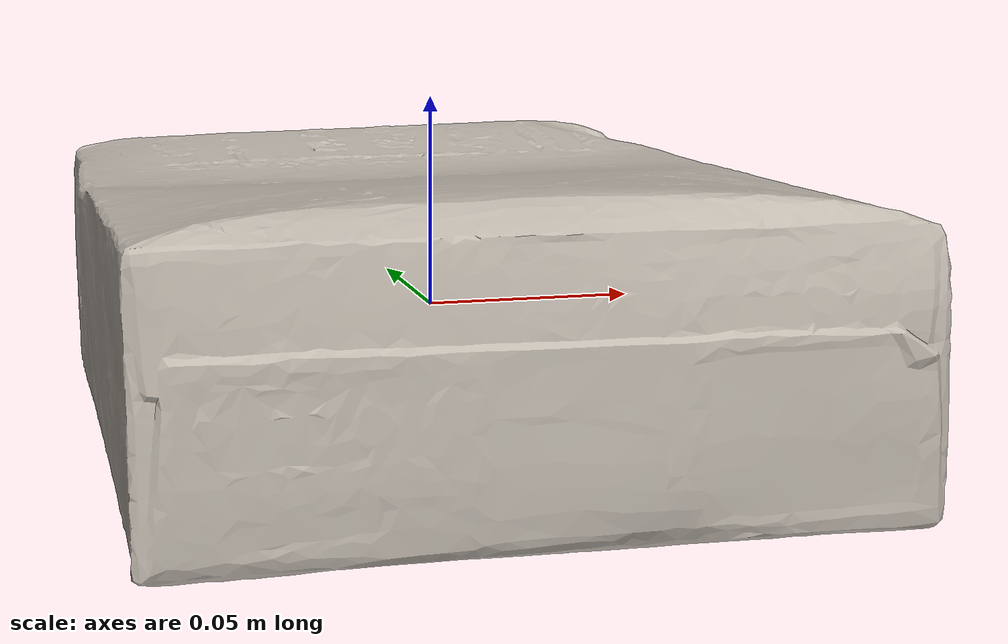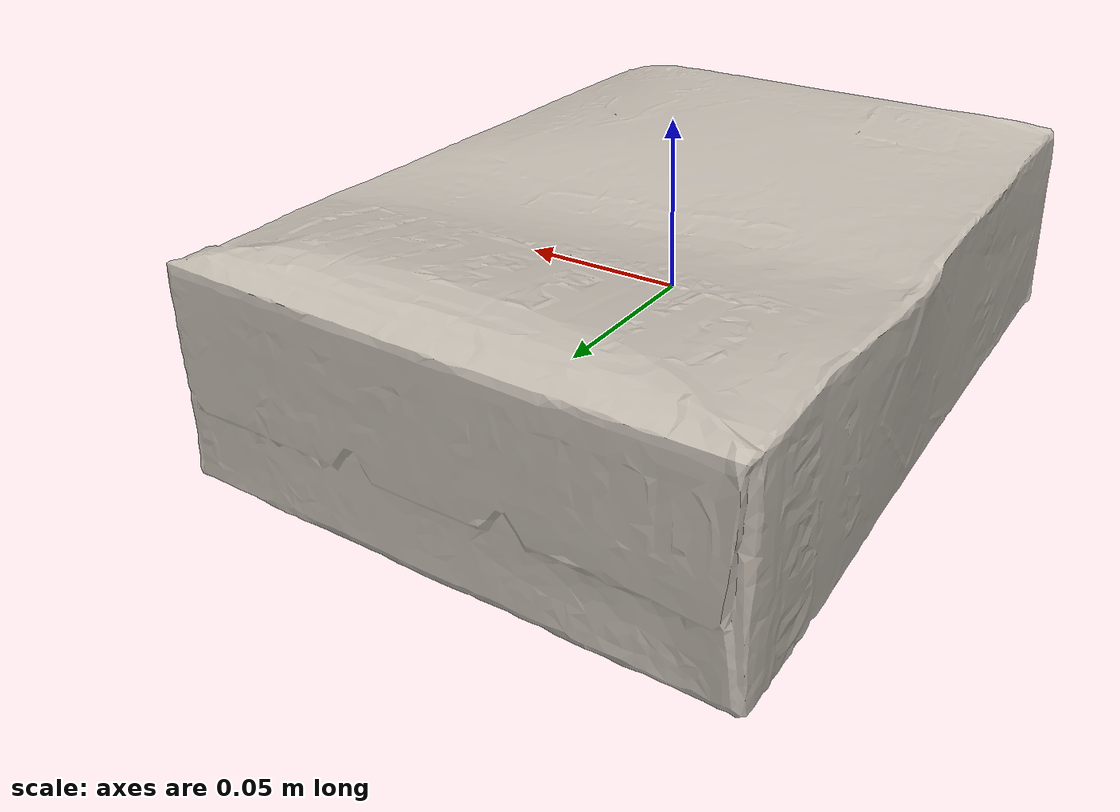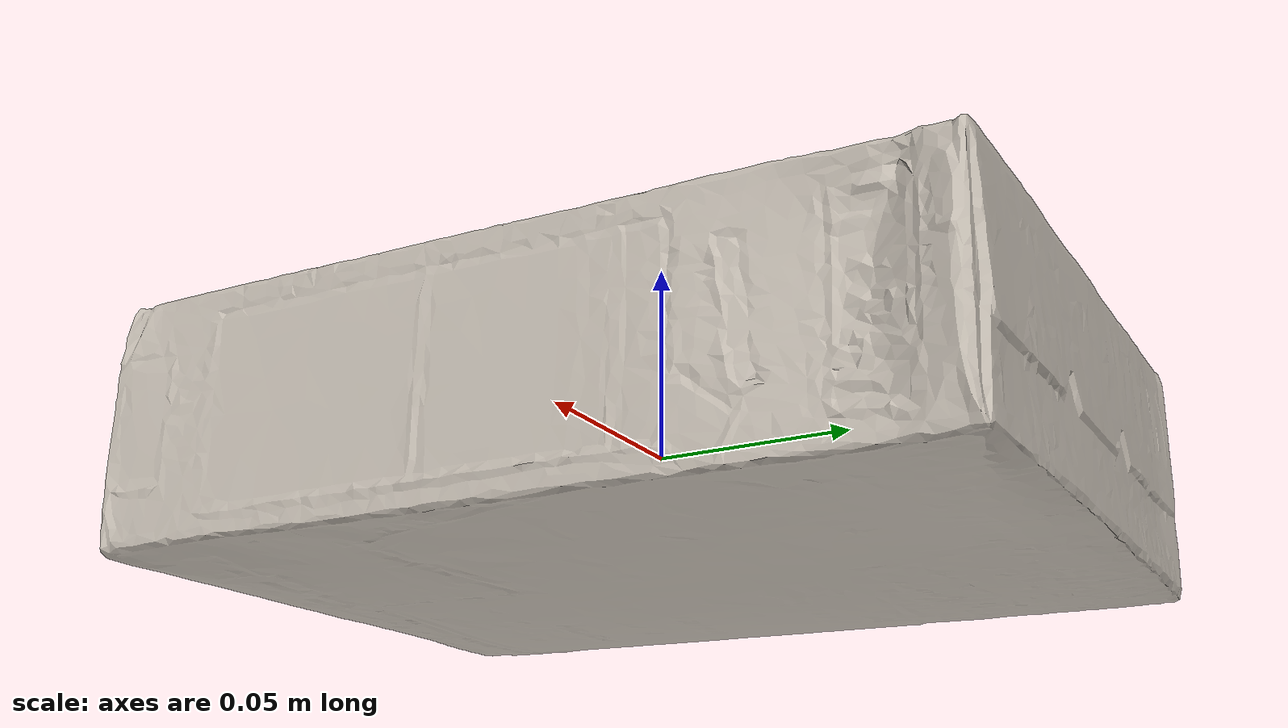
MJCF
<mujoco model="cracker_box_flipped">
  <compiler angle="radian" />

  <asset>
    <mesh name="cracker_box_flipped_visual_mesh" file="cracker_box_flipped/textured.obj" />
    <mesh name="cracker_box_flipped_collision_mesh_0" file="cracker_box_flipped/textured_coacd_0.stl" />
    <mesh name="cracker_box_flipped_collision_mesh_1" file="cracker_box_flipped/textured_coacd_1.stl" />
    <texture name="cracker_box_flipped_texture" type="2d" file="cracker_box_flipped/texture_map.png" />
    <material name="cracker_box_flipped_material" texture="cracker_box_flipped_texture" />
  </asset>

  <worldbody>
    <body name="cracker_box_flipped" pos="0 0 0" euler="0 0 0">
      <freejoint name="cracker_box_flipped_joint" />
      <geom name="cracker_box_flipped_visual_geom" type="mesh" mesh="cracker_box_flipped_visual_mesh" material="cracker_box_flipped_material" pos="0.01420505447388014 -0.10220486833098277 0.01485355781018036" euler="0 0 0" contype="0" conaffinity="0" group="0" />
      <geom name="cracker_box_flipped_collision_geom_0" type="mesh" mesh="cracker_box_flipped_collision_mesh_0" pos="0.01420505447388014 -0.10220486833098277 0.01485355781018036" euler="0 0 0" contype="1" conaffinity="1" group="3" />
      <geom name="cracker_box_flipped_collision_geom_1" type="mesh" mesh="cracker_box_flipped_collision_mesh_1" pos="0.01420505447388014 -0.10220486833098277 0.01485355781018036" euler="0 0 0" contype="1" conaffinity="1" group="3" />
      <inertial pos="0 0 0" euler="0 0 0" mass="0.411" diaginertia="0.001 0.001 0.001" />
    </body>
  </worldbody>
</mujoco>
